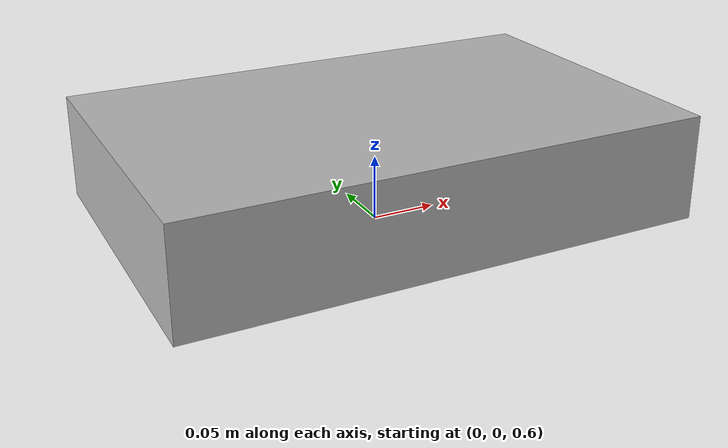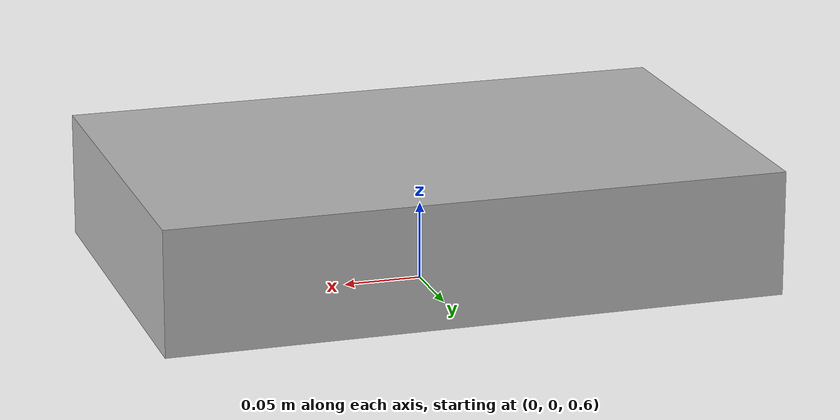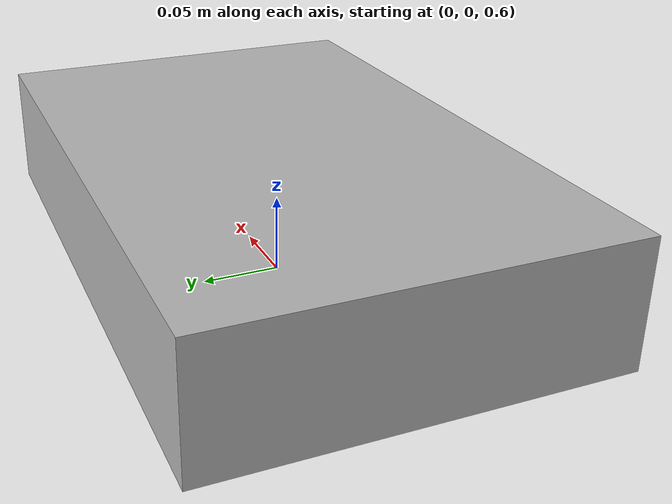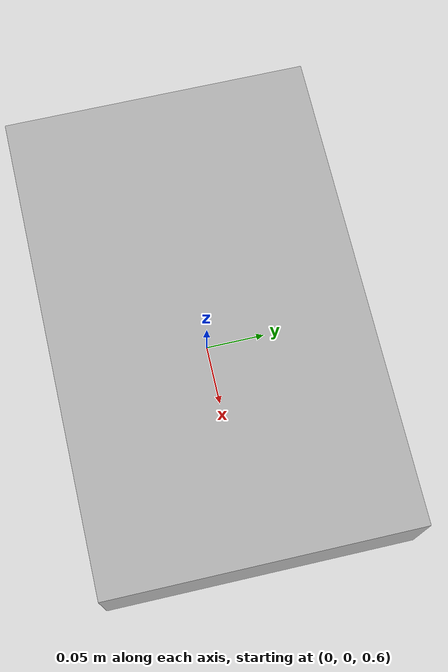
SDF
<sdf version="1.3">
<model name="essbarbox">
  <pose>0 0 0.65 1.57 0.00 1.57</pose>
  <static>false</static>
    <link name="link">
      <inertial>
        <mass>1.0</mass>
        <inertia>
          <ixx>1.0</ixx>
          <ixy>0.0</ixy>
          <ixz>0.0</ixz>
          <iyy>1.0</iyy>
          <iyz>0.0</iyz>
          <izz>1.0</izz>
        </inertia>
      </inertial>
      <collision name="collision">
        <geometry>
          <box>
            <size>0.252 0.08 0.395</size>
          </box>
        </geometry>
      </collision>
      <visual name="visual">
        <geometry>
          <box>
            <size>0.252 0.08 0.395</size>
          </box>
        </geometry>
        <material>
          <script>
            <uri>model://essbar-box/materials/scripts</uri>
            <uri>model://essbar-box/materials/textures</uri>
            <name>Essbarbox/Diffuse</name>
          </script>
        </material>
      </visual>
    </link>
  </model>
</sdf>
